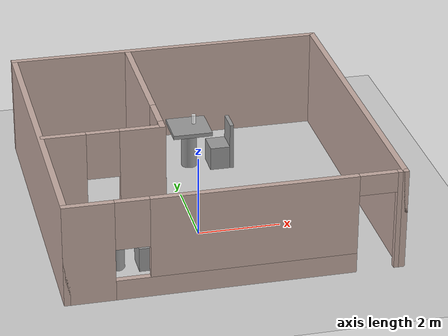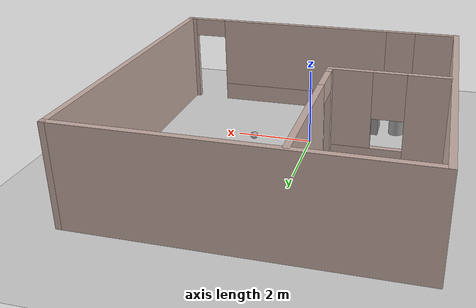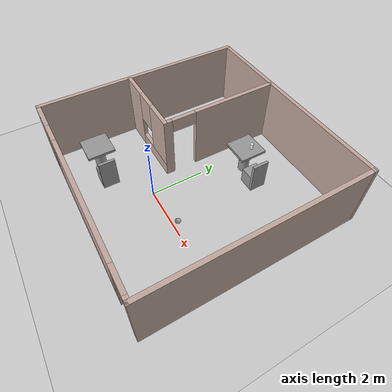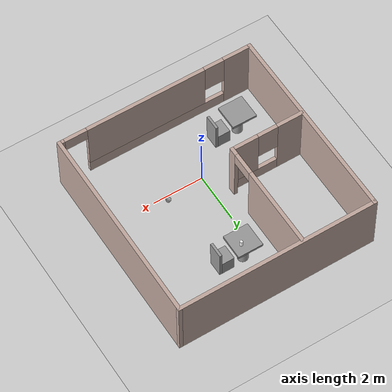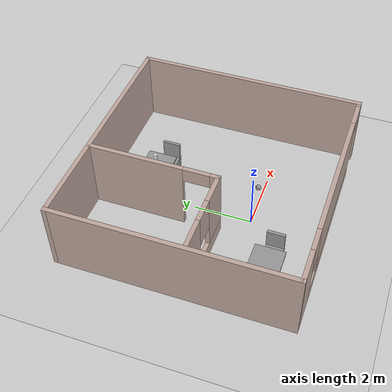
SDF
<sdf version="1.6">
 <world name="default">
  <plugin name="hello" filename="libhello.so"/>
  <light name="sun" type="directional">
   <pose>0 0 10 0 -0 0</pose>
   <diffuse>0.8 0.8 0.8 1</diffuse>
   <specular>0.2 0.2 0.2 1</specular>
   <attenuation>
    <range>1000</range>
    <constant>0.9</constant>
    <linear>0.01</linear>
    <quadratic>0.001</quadratic>
   </attenuation>
   <direction>-0.5 0.1 -0.9</direction>
  </light>
  <model name="ground_plane">
   <static>1</static>
   <link name="link">
    <collision name="collision">
     <geometry><plane><normal>0 0 1</normal><size>100 100</size></plane></geometry>
     <surface>
      <contact><collide_bitmask>65535</collide_bitmask></contact>
      <friction><ode><mu>100</mu><mu2>50</mu2></ode></friction>
     </surface>
    </collision>
    <visual name="visual">
     <cast_shadows>0</cast_shadows>
     <geometry><plane><normal>0 0 1</normal><size>100 100</size></plane></geometry>
     <material>
      <script><uri>file://media/materials/scripts/gazebo.material</uri><name>Gazebo/Grey</name></script>
     </material>
    </visual>
   </link>
  </model>
  <gravity>0 0 -9.8</gravity>
  <magnetic_field>6e-06 2.3e-05 -4.2e-05</magnetic_field>
  <atmosphere type="adiabatic"/>
  <physics name="default_physics" default="0" type="ode">
   <max_step_size>0.001</max_step_size>
   <real_time_factor>1</real_time_factor>
   <real_time_update_rate>1000</real_time_update_rate>
  </physics>
  <scene><ambient>0.4 0.4 0.4 1</ambient><background>0.7 0.7 0.7 1</background><shadows>1</shadows></scene>
  <spherical_coordinates>
   <surface_model>EARTH_WGS84</surface_model>
   <latitude_deg>0</latitude_deg>
   <longitude_deg>0</longitude_deg>
   <elevation>0</elevation>
   <heading_deg>0</heading_deg>
  </spherical_coordinates>
  <model name="model">
   <pose>0.334 1.4475 0 0 -0 0</pose>
   <link name="Wall_1">
    <collision name="Wall_1_Collision">
     <geometry><box><size>8 0.15 2.5</size></box></geometry>
     <pose>0 0 1.25 0 -0 0</pose>
    </collision>
    <visual name="Wall_1_Visual">
     <pose>0 0 1.25 0 -0 0</pose>
     <geometry><box><size>8 0.15 2.5</size></box></geometry>
     <material>
      <script><uri>file://media/materials/scripts/gazebo.material</uri><name>Gazebo/Grey</name></script>
      <ambient>0.760784 0.662745 0.627451 1</ambient>
     </material>
     <meta><layer>0</layer></meta>
    </visual>
    <pose>-3.925 0 0 0 0 -1.5708</pose>
   </link>
   <link name="Wall_2">
    <pose>0 -3.925 0 0 -0 0</pose>
    <visual name="Wall_2_Visual_0">
     <pose>-3.39988 0 1.25 0 -0 0</pose>
     <geometry><box><size>1.20024 0.15 2.5</size></box></geometry>
     <material>
      <script><uri>file://media/materials/scripts/gazebo.material</uri><name>Gazebo/Grey</name></script>
      <ambient>0.760784 0.662745 0.627451 1</ambient>
     </material>
     <meta><layer>0</layer></meta>
    </visual>
    <collision name="Wall_2_Collision_0">
     <geometry><box><size>1.20024 0.15 2.5</size></box></geometry>
     <pose>-3.39988 0 1.25 0 -0 0</pose>
    </collision>
    <visual name="Wall_2_Visual_1">
     <pose>3.86822 0 1.25 0 -0 0</pose>
     <geometry><box><size>0.26356 0.15 2.5</size></box></geometry>
     <material>
      <script><uri>file://media/materials/scripts/gazebo.material</uri><name>Gazebo/Grey</name></script>
      <ambient>0.760784 0.662745 0.627451 1</ambient>
     </material>
     <meta><layer>0</layer></meta>
    </visual>
    <collision name="Wall_2_Collision_1">
     <geometry><box><size>0.26356 0.15 2.5</size></box></geometry>
     <pose>3.86822 0 1.25 0 -0 0</pose>
    </collision>
    <visual name="Wall_2_Visual_2">
     <pose>0.01834 0 0.25 0 -0 0</pose>
     <geometry><box><size>5.6362 0.15 0.5</size></box></geometry>
     <material>
      <script><uri>file://media/materials/scripts/gazebo.material</uri><name>Gazebo/Grey</name></script>
      <ambient>0.760784 0.662745 0.627451 1</ambient>
     </material>
     <meta><layer>0</layer></meta>
    </visual>
    <collision name="Wall_2_Collision_2">
     <geometry><box><size>5.6362 0.15 0.5</size></box></geometry>
     <pose>0.01834 0 0.25 0 -0 0</pose>
    </collision>
    <visual name="Wall_2_Visual_3">
     <pose>0.41834 0 1.5 0 -0 0</pose>
     <geometry><box><size>4.8362 0.15 2</size></box></geometry>
     <material>
      <script><uri>file://media/materials/scripts/gazebo.material</uri><name>Gazebo/Grey</name></script>
      <ambient>0.760784 0.662745 0.627451 1</ambient>
     </material>
     <meta><layer>0</layer></meta>
    </visual>
    <collision name="Wall_2_Collision_3">
     <geometry><box><size>4.8362 0.15 2</size></box></geometry>
     <pose>0.41834 0 1.5 0 -0 0</pose>
    </collision>
    <visual name="Wall_2_Visual_4">
     <pose>-2.39976 0 1.9 0 -0 0</pose>
     <geometry><box><size>0.8 0.15 1.2</size></box></geometry>
     <material>
      <script><uri>file://media/materials/scripts/gazebo.material</uri><name>Gazebo/Grey</name></script>
      <ambient>0.760784 0.662745 0.627451 1</ambient>
     </material>
     <meta><layer>0</layer></meta>
    </visual>
    <collision name="Wall_2_Collision_4">
     <geometry><box><size>0.8 0.15 1.2</size></box></geometry>
     <pose>-2.39976 0 1.9 0 -0 0</pose>
    </collision>
    <visual name="Wall_2_Visual_5">
     <pose>3.28644 0 2.25 0 -0 0</pose>
     <geometry><box><size>0.9 0.15 0.5</size></box></geometry>
     <material>
      <script><uri>file://media/materials/scripts/gazebo.material</uri><name>Gazebo/Grey</name></script>
      <ambient>0.760784 0.662745 0.627451 1</ambient>
     </material>
     <meta><layer>0</layer></meta>
    </visual>
    <collision name="Wall_2_Collision_5">
     <geometry><box><size>0.9 0.15 0.5</size></box></geometry>
     <pose>3.28644 0 2.25 0 -0 0</pose>
    </collision>
   </link>
   <link name="Wall_3">
    <collision name="Wall_3_Collision">
     <geometry><box><size>8 0.15 2.5</size></box></geometry>
     <pose>0 0 1.25 0 -0 0</pose>
    </collision>
    <visual name="Wall_3_Visual">
     <pose>0 0 1.25 0 -0 0</pose>
     <geometry><box><size>8 0.15 2.5</size></box></geometry>
     <material>
      <script><uri>file://media/materials/scripts/gazebo.material</uri><name>Gazebo/Grey</name></script>
      <ambient>0.760784 0.662745 0.627451 1</ambient>
     </material>
     <meta><layer>0</layer></meta>
    </visual>
    <pose>3.925 0 0 0 -0 1.5708</pose>
   </link>
   <link name="Wall_4">
    <collision name="Wall_4_Collision">
     <geometry><box><size>8 0.15 2.5</size></box></geometry>
     <pose>0 0 1.25 0 -0 0</pose>
    </collision>
    <visual name="Wall_4_Visual">
     <pose>0 0 1.25 0 -0 0</pose>
     <geometry><box><size>8 0.15 2.5</size></box></geometry>
     <material>
      <script><uri>file://media/materials/scripts/gazebo.material</uri><name>Gazebo/Grey</name></script>
      <ambient>0.760784 0.662745 0.627451 1</ambient>
     </material>
     <meta><layer>0</layer></meta>
    </visual>
    <pose>0 3.925 0 0 -0 3.14159</pose>
   </link>
   <link name="Wall_6">
    <pose>-2.42656 -0.496144 0 0 -0 0</pose>
    <visual name="Wall_6_Visual_0">
     <pose>-0.959286 0 1.25 0 -0 0</pose>
     <geometry><box><size>1.08143 0.15 2.5</size></box></geometry>
     <material>
      <script><uri>file://media/materials/scripts/gazebo.material</uri><name>Gazebo/Grey</name></script>
      <ambient>0.760784 0.662745 0.627451 1</ambient>
     </material>
     <meta><layer>0</layer></meta>
    </visual>
    <collision name="Wall_6_Collision_0">
     <geometry><box><size>1.08143 0.15 2.5</size></box></geometry>
     <pose>-0.959286 0 1.25 0 -0 0</pose>
    </collision>
    <visual name="Wall_6_Visual_1">
     <pose>0.540714 0 0.25 0 -0 0</pose>
     <geometry><box><size>1.91857 0.15 0.5</size></box></geometry>
     <material>
      <script><uri>file://media/materials/scripts/gazebo.material</uri><name>Gazebo/Grey</name></script>
      <ambient>0.760784 0.662745 0.627451 1</ambient>
     </material>
     <meta><layer>0</layer></meta>
    </visual>
    <collision name="Wall_6_Collision_1">
     <geometry><box><size>1.91857 0.15 0.5</size></box></geometry>
     <pose>0.540714 0 0.25 0 -0 0</pose>
    </collision>
    <visual name="Wall_6_Visual_2">
     <pose>0.940714 0 1.5 0 -0 0</pose>
     <geometry><box><size>1.11857 0.15 2</size></box></geometry>
     <material>
      <script><uri>file://media/materials/scripts/gazebo.material</uri><name>Gazebo/Grey</name></script>
      <ambient>0.760784 0.662745 0.627451 1</ambient>
     </material>
     <meta><layer>0</layer></meta>
    </visual>
    <collision name="Wall_6_Collision_2">
     <geometry><box><size>1.11857 0.15 2</size></box></geometry>
     <pose>0.940714 0 1.5 0 -0 0</pose>
    </collision>
    <visual name="Wall_6_Visual_3">
     <pose>-0.018573 0 1.9 0 -0 0</pose>
     <geometry><box><size>0.8 0.15 1.2</size></box></geometry>
     <material>
      <script><uri>file://media/materials/scripts/gazebo.material</uri><name>Gazebo/Grey</name></script>
      <ambient>0.760784 0.662745 0.627451 1</ambient>
     </material>
     <meta><layer>0</layer></meta>
    </visual>
    <collision name="Wall_6_Collision_3">
     <geometry><box><size>0.8 0.15 1.2</size></box></geometry>
     <pose>-0.018573 0 1.9 0 -0 0</pose>
    </collision>
   </link>
   <link name="Wall_7">
    <pose>-1.00156 1.67886 0 0 -0 1.5708</pose>
    <visual name="Wall_7_Visual_0">
     <pose>-2.08211 0 1.25 0 -0 0</pose>
     <geometry><box><size>0.335775 0.15 2.5</size></box></geometry>
     <material>
      <script><uri>file://media/materials/scripts/gazebo.material</uri><name>Gazebo/Grey</name></script>
      <ambient>0.760784 0.662745 0.627451 1</ambient>
     </material>
     <meta><layer>0</layer></meta>
    </visual>
    <collision name="Wall_7_Collision_0">
     <geometry><box><size>0.335775 0.15 2.5</size></box></geometry>
     <pose>-2.08211 0 1.25 0 -0 0</pose>
    </collision>
    <visual name="Wall_7_Visual_1">
     <pose>0.617888 0 1.25 0 -0 0</pose>
     <geometry><box><size>3.26423 0.15 2.5</size></box></geometry>
     <material>
      <script><uri>file://media/materials/scripts/gazebo.material</uri><name>Gazebo/Grey</name></script>
      <ambient>0.760784 0.662745 0.627451 1</ambient>
     </material>
     <meta><layer>0</layer></meta>
    </visual>
    <collision name="Wall_7_Collision_1">
     <geometry><box><size>3.26423 0.15 2.5</size></box></geometry>
     <pose>0.617888 0 1.25 0 -0 0</pose>
    </collision>
    <visual name="Wall_7_Visual_2">
     <pose>-1.46423 0 2.25 0 -0 0</pose>
     <geometry><box><size>0.9 0.15 0.5</size></box></geometry>
     <material>
      <script><uri>file://media/materials/scripts/gazebo.material</uri><name>Gazebo/Grey</name></script>
      <ambient>0.760784 0.662745 0.627451 1</ambient>
     </material>
     <meta><layer>0</layer></meta>
    </visual>
    <collision name="Wall_7_Collision_2">
     <geometry><box><size>0.9 0.15 0.5</size></box></geometry>
     <pose>-1.46423 0 2.25 0 -0 0</pose>
    </collision>
   </link>
   <static>1</static>
  </model>
  <audio><device>default</device></audio>
  <model name="Desk_clone">
   <link name="link_0">
    <pose>0 0 -0.275 0 -0 0</pose>
    <inertial>
     <mass>1</mass>
     <inertia><ixx>0.145833</ixx><ixy>0</ixy><ixz>0</ixz><iyy>0.145833</iyy><iyz>0</iyz><izz>0.125</izz></inertia>
    </inertial>
    <visual name="visual">
     <geometry><cylinder><radius>0.2</radius><length>1</length></cylinder></geometry>
     <material>
      <lighting>1</lighting>
      <script><uri>file://media/materials/scripts/gazebo.material</uri><name>Gazebo/Grey</name></script>
      <shader type="pixel"><normal_map>__default__</normal_map></shader>
      <ambient>0.3 0.3 0.3 1</ambient>
      <diffuse>0.7 0.7 0.7 1</diffuse>
      <specular>0.01 0.01 0.01 1</specular>
      <emissive>0 0 0 1</emissive>
     </material>
    </visual>
    <collision name="collision">
     <geometry><cylinder><radius>0.2</radius><length>1</length></cylinder></geometry>
     <surface>
      <friction>
       <ode><mu>1</mu><mu2>1</mu2><fdir1>0 0 0</fdir1><slip1>0</slip1><slip2>0</slip2></ode>
       <torsional>
        <coefficient>1</coefficient>
        <patch_radius>0</patch_radius>
        <surface_radius>0</surface_radius>
        <use_patch_radius>1</use_patch_radius>
        <ode><slip>0</slip></ode>
       </torsional>
      </friction>
      <bounce><restitution_coefficient>0</restitution_coefficient><threshold>1e+06</threshold></bounce>
      <contact>
       <collide_without_contact>0</collide_without_contact>
       <collide_without_contact_bitmask>1</collide_without_contact_bitmask>
       <collide_bitmask>1</collide_bitmask>
       <ode>
        <soft_cfm>0</soft_cfm>
        <soft_erp>0.2</soft_erp>
        <kp>1e+13</kp>
        <kd>1</kd>
        <max_vel>0.01</max_vel>
        <min_depth>0</min_depth>
       </ode>
       <bullet>
        <split_impulse>1</split_impulse>
        <split_impulse_penetration_threshold>-0.01</split_impulse_penetration_threshold>
        <soft_cfm>0</soft_cfm>
        <soft_erp>0.2</soft_erp>
        <kp>1e+13</kp>
        <kd>1</kd>
       </bullet>
      </contact>
     </surface>
    </collision>
   </link>
   <link name="link_1">
    <pose>-0 -0 0.275 0 -0 0</pose>
    <inertial>
     <mass>1</mass>
     <inertia>
      <ixx>0.166667</ixx>
      <ixy>0</ixy>
      <ixz>0</ixz>
      <iyy>0.166667</iyy>
      <iyz>0</iyz>
      <izz>0.166667</izz>
     </inertia>
    </inertial>
    <visual name="visual">
     <geometry><box><size>1 1 0.1</size></box></geometry>
     <material>
      <lighting>1</lighting>
      <script><uri>file://media/materials/scripts/gazebo.material</uri><name>Gazebo/Grey</name></script>
      <shader type="pixel"><normal_map>__default__</normal_map></shader>
      <ambient>0.3 0.3 0.3 1</ambient>
      <diffuse>0.7 0.7 0.7 1</diffuse>
      <specular>0.01 0.01 0.01 1</specular>
      <emissive>0 0 0 1</emissive>
     </material>
    </visual>
    <collision name="collision">
     <geometry><box><size>1 1 0.1</size></box></geometry>
     <surface>
      <friction>
       <ode><mu>1</mu><mu2>1</mu2><fdir1>0 0 0</fdir1><slip1>0</slip1><slip2>0</slip2></ode>
       <torsional>
        <coefficient>1</coefficient>
        <patch_radius>0</patch_radius>
        <surface_radius>0</surface_radius>
        <use_patch_radius>1</use_patch_radius>
        <ode><slip>0</slip></ode>
       </torsional>
      </friction>
      <bounce><restitution_coefficient>0</restitution_coefficient><threshold>1e+06</threshold></bounce>
      <contact>
       <collide_without_contact>0</collide_without_contact>
       <collide_without_contact_bitmask>1</collide_without_contact_bitmask>
       <collide_bitmask>1</collide_bitmask>
       <ode>
        <soft_cfm>0</soft_cfm>
        <soft_erp>0.2</soft_erp>
        <kp>1e+13</kp>
        <kd>1</kd>
        <max_vel>0.01</max_vel>
        <min_depth>0</min_depth>
       </ode>
       <bullet>
        <split_impulse>1</split_impulse>
        <split_impulse_penetration_threshold>-0.01</split_impulse_penetration_threshold>
        <soft_cfm>0</soft_cfm>
        <soft_erp>0.2</soft_erp>
        <kp>1e+13</kp>
        <kd>1</kd>
       </bullet>
      </contact>
     </surface>
    </collision>
   </link>
   <joint name="link_0_JOINT_0" type="revolute">
    <parent>link_0</parent>
    <child>link_1</child>
    <axis>
     <xyz>0 0 1</xyz>
     <use_parent_model_frame>0</use_parent_model_frame>
     <limit>
      <lower>-1.79769e+308</lower>
      <upper>1.79769e+308</upper>
      <effort>-1</effort>
      <velocity>-1</velocity>
     </limit>
     <dynamics>
      <spring_reference>0</spring_reference>
      <spring_stiffness>0</spring_stiffness>
      <damping>0</damping>
      <friction>0</friction>
     </dynamics>
    </axis>
    <physics>
     <ode><limit><cfm>0</cfm><erp>0.2</erp></limit><suspension><cfm>0</cfm><erp>0.2</erp></suspension></ode>
    </physics>
   </joint>
   <static>0</static>
   <pose>0.553905 3.54992 0.774994 1e-06 1e-06 -0.002745</pose>
  </model>
  <model name="chair_clone">
   <link name="link_3_clone">
    <inertial>
     <mass>1</mass>
     <inertia>
      <ixx>0.166667</ixx>
      <ixy>0</ixy>
      <ixz>0</ixz>
      <iyy>0.166667</iyy>
      <iyz>0</iyz>
      <izz>0.166667</izz>
     </inertia>
    </inertial>
    <pose>0.15 0 0.15 0 -0 0</pose>
    <visual name="visual">
     <geometry><box><size>0.1 0.6 1.2</size></box></geometry>
     <material>
      <lighting>1</lighting>
      <script><uri>file://media/materials/scripts/gazebo.material</uri><name>Gazebo/Grey</name></script>
      <shader type="vertex"><normal_map>__default__</normal_map></shader>
      <ambient>0.3 0.3 0.3 1</ambient>
      <diffuse>0.7 0.7 0.7 1</diffuse>
      <specular>0.01 0.01 0.01 1</specular>
      <emissive>0 0 0 1</emissive>
     </material>
    </visual>
    <collision name="collision">
     <geometry><box><size>0.1 0.6 1.2</size></box></geometry>
     <surface>
      <friction>
       <ode><mu>1</mu><mu2>1</mu2><fdir1>0 0 0</fdir1><slip1>0</slip1><slip2>0</slip2></ode>
       <torsional>
        <coefficient>1</coefficient>
        <patch_radius>0</patch_radius>
        <surface_radius>0</surface_radius>
        <use_patch_radius>1</use_patch_radius>
        <ode><slip>0</slip></ode>
       </torsional>
      </friction>
      <bounce><restitution_coefficient>0</restitution_coefficient><threshold>1e+06</threshold></bounce>
      <contact>
       <collide_without_contact>0</collide_without_contact>
       <collide_without_contact_bitmask>1</collide_without_contact_bitmask>
       <collide_bitmask>1</collide_bitmask>
       <ode>
        <soft_cfm>0</soft_cfm>
        <soft_erp>0.2</soft_erp>
        <kp>1e+13</kp>
        <kd>1</kd>
        <max_vel>0.01</max_vel>
        <min_depth>0</min_depth>
       </ode>
       <bullet>
        <split_impulse>1</split_impulse>
        <split_impulse_penetration_threshold>-0.01</split_impulse_penetration_threshold>
        <soft_cfm>0</soft_cfm>
        <soft_erp>0.2</soft_erp>
        <kp>1e+13</kp>
        <kd>1</kd>
       </bullet>
      </contact>
     </surface>
    </collision>
   </link>
   <link name="link_4">
    <inertial>
     <mass>1</mass>
     <inertia>
      <ixx>0.166667</ixx>
      <ixy>0</ixy>
      <ixz>0</ixz>
      <iyy>0.166667</iyy>
      <iyz>0</iyz>
      <izz>0.166667</izz>
     </inertia>
    </inertial>
    <pose>-0.15 0 -0.15 0 -0 0</pose>
    <visual name="visual">
     <geometry><box><size>0.5 0.6 0.6</size></box></geometry>
     <material>
      <lighting>1</lighting>
      <script><uri>file://media/materials/scripts/gazebo.material</uri><name>Gazebo/Grey</name></script>
      <shader type="vertex"><normal_map>__default__</normal_map></shader>
      <ambient>0.3 0.3 0.3 1</ambient>
      <diffuse>0.7 0.7 0.7 1</diffuse>
      <specular>0.01 0.01 0.01 1</specular>
      <emissive>0 0 0 1</emissive>
     </material>
    </visual>
    <collision name="collision">
     <geometry><box><size>0.5 0.6 0.6</size></box></geometry>
     <surface>
      <friction>
       <ode><mu>1</mu><mu2>1</mu2><fdir1>0 0 0</fdir1><slip1>0</slip1><slip2>0</slip2></ode>
       <torsional>
        <coefficient>1</coefficient>
        <patch_radius>0</patch_radius>
        <surface_radius>0</surface_radius>
        <use_patch_radius>1</use_patch_radius>
        <ode><slip>0</slip></ode>
       </torsional>
      </friction>
      <bounce><restitution_coefficient>0</restitution_coefficient><threshold>1e+06</threshold></bounce>
      <contact>
       <collide_without_contact>0</collide_without_contact>
       <collide_without_contact_bitmask>1</collide_without_contact_bitmask>
       <collide_bitmask>1</collide_bitmask>
       <ode>
        <soft_cfm>0</soft_cfm>
        <soft_erp>0.2</soft_erp>
        <kp>1e+13</kp>
        <kd>1</kd>
        <max_vel>0.01</max_vel>
        <min_depth>0</min_depth>
       </ode>
       <bullet>
        <split_impulse>1</split_impulse>
        <split_impulse_penetration_threshold>-0.01</split_impulse_penetration_threshold>
        <soft_cfm>0</soft_cfm>
        <soft_erp>0.2</soft_erp>
        <kp>1e+13</kp>
        <kd>1</kd>
       </bullet>
      </contact>
     </surface>
    </collision>
   </link>
   <joint name="link_3_clone_JOINT_7" type="fixed">
    <parent>link_3_clone</parent>
    <child>link_4</child>
    <physics>
     <ode><limit><cfm>0</cfm><erp>0.2</erp></limit><suspension><cfm>0</cfm><erp>0.2</erp></suspension></ode>
    </physics>
   </joint>
   <static>0</static>
   <pose>1.42238 3.43153 0.45 1e-06 1e-06 -0.001423</pose>
  </model>
  <model name="my_ball">
   <link name="link_0">
    <inertial>
     <mass>1</mass>
     <inertia><ixx>0.1</ixx><ixy>0</ixy><ixz>0</ixz><iyy>0.1</iyy><iyz>0</iyz><izz>0.1</izz></inertia>
    </inertial>
    <pose>0 0 0.1 0 -0 0</pose>
    <visual name="visual">
     <geometry><sphere><radius>0.1</radius></sphere></geometry>
     <material>
      <lighting>1</lighting>
      <script><uri>file://media/materials/scripts/gazebo.material</uri><name>Gazebo/Grey</name></script>
      <shader type="vertex"><normal_map>__default__</normal_map></shader>
      <ambient>1 1 1 1</ambient>
      <diffuse>1 1 1 1</diffuse>
      <specular>1 1 1 1</specular>
      <emissive>1 1 1 1</emissive>
     </material>
    </visual>
    <collision name="collision">
     <geometry><sphere><radius>0.1</radius></sphere></geometry>
     <surface>
      <friction>
       <ode><mu>1</mu><mu2>1</mu2><fdir1>0 0 0</fdir1><slip1>0</slip1><slip2>0</slip2></ode>
       <torsional>
        <coefficient>1</coefficient>
        <patch_radius>0</patch_radius>
        <surface_radius>0</surface_radius>
        <use_patch_radius>1</use_patch_radius>
        <ode><slip>0</slip></ode>
       </torsional>
      </friction>
      <bounce><restitution_coefficient>0</restitution_coefficient><threshold>1e+06</threshold></bounce>
      <contact>
       <collide_without_contact>0</collide_without_contact>
       <collide_without_contact_bitmask>1</collide_without_contact_bitmask>
       <collide_bitmask>1</collide_bitmask>
       <ode>
        <soft_cfm>0</soft_cfm>
        <soft_erp>0.2</soft_erp>
        <kp>1e+13</kp>
        <kd>1</kd>
        <max_vel>0.01</max_vel>
        <min_depth>0</min_depth>
       </ode>
       <bullet>
        <split_impulse>1</split_impulse>
        <split_impulse_penetration_threshold>-0.01</split_impulse_penetration_threshold>
        <soft_cfm>0</soft_cfm>
        <soft_erp>0.2</soft_erp>
        <kp>1e+13</kp>
        <kd>1</kd>
       </bullet>
      </contact>
     </surface>
    </collision>
   </link>
   <static>0</static>
   <pose>1.51589 0.197764 -0 0 -0 0</pose>
  </model>
  <model name="beer">
   <link name="link">
    <pose>1.2 0 1.18 0 -0 0</pose>
    <inertial>
     <mass>0.39</mass>
     <inertia><ixx>0.00058</ixx><ixy>0</ixy><ixz>0</ixz><iyy>0.00058</iyy><iyz>0</iyz><izz>0.00019</izz></inertia>
    </inertial>
    <visual name="visual">
     <geometry><cylinder><radius>0.055</radius><length>0.23</length></cylinder></geometry>
     <material>
      <script>
       <uri>model://beer/materials/scripts</uri>
       <uri>model://beer/materials/textures</uri>
       <name>Beer/Diffuse</name>
      </script>
      <shader type="pixel"><normal_map>__default__</normal_map></shader>
      <ambient>1 1 1 1</ambient>
      <diffuse>1 1 1 1</diffuse>
      <specular>0 0 0 1</specular>
      <emissive>0 0 0 1</emissive>
     </material>
    </visual>
    <collision name="collision">
     <geometry><cylinder><radius>0.055</radius><length>0.23</length></cylinder></geometry>
     <surface>
      <friction>
       <ode><mu>1</mu><mu2>1</mu2><fdir1>0 0 0</fdir1><slip1>0</slip1><slip2>0</slip2></ode>
       <torsional>
        <coefficient>1</coefficient>
        <patch_radius>0</patch_radius>
        <surface_radius>0</surface_radius>
        <use_patch_radius>1</use_patch_radius>
        <ode><slip>0</slip></ode>
       </torsional>
      </friction>
      <bounce><restitution_coefficient>0</restitution_coefficient><threshold>1e+06</threshold></bounce>
      <contact>
       <collide_without_contact>0</collide_without_contact>
       <collide_without_contact_bitmask>1</collide_without_contact_bitmask>
       <collide_bitmask>1</collide_bitmask>
       <ode>
        <soft_cfm>0</soft_cfm>
        <soft_erp>0.2</soft_erp>
        <kp>1e+13</kp>
        <kd>1</kd>
        <max_vel>0.01</max_vel>
        <min_depth>0</min_depth>
       </ode>
       <bullet>
        <split_impulse>1</split_impulse>
        <split_impulse_penetration_threshold>-0.01</split_impulse_penetration_threshold>
        <soft_cfm>0</soft_cfm>
        <soft_erp>0.2</soft_erp>
        <kp>1e+13</kp>
        <kd>1</kd>
       </bullet>
      </contact>
     </surface>
    </collision>
   </link>
   <static>0</static>
   <pose>-0.494056 3.69056 0.034985 -8e-06 -1e-05 -0.010491</pose>
  </model>
  <model name="Desk_clone_clone">
   <link name="link_0">
    <pose>0 0 -0.275 0 -0 0</pose>
    <inertial>
     <mass>1</mass>
     <inertia><ixx>0.145833</ixx><ixy>0</ixy><ixz>0</ixz><iyy>0.145833</iyy><iyz>0</iyz><izz>0.125</izz></inertia>
    </inertial>
    <visual name="visual">
     <geometry><cylinder><radius>0.2</radius><length>1</length></cylinder></geometry>
     <material>
      <lighting>1</lighting>
      <script><uri>file://media/materials/scripts/gazebo.material</uri><name>Gazebo/Grey</name></script>
      <shader type="pixel"><normal_map>__default__</normal_map></shader>
      <ambient>0.3 0.3 0.3 1</ambient>
      <diffuse>0.7 0.7 0.7 1</diffuse>
      <specular>0.01 0.01 0.01 1</specular>
      <emissive>0 0 0 1</emissive>
     </material>
    </visual>
    <collision name="collision">
     <geometry><cylinder><radius>0.2</radius><length>1</length></cylinder></geometry>
     <surface>
      <friction>
       <ode><mu>1</mu><mu2>1</mu2><fdir1>0 0 0</fdir1><slip1>0</slip1><slip2>0</slip2></ode>
       <torsional>
        <coefficient>1</coefficient>
        <patch_radius>0</patch_radius>
        <surface_radius>0</surface_radius>
        <use_patch_radius>1</use_patch_radius>
        <ode><slip>0</slip></ode>
       </torsional>
      </friction>
      <bounce><restitution_coefficient>0</restitution_coefficient><threshold>1e+06</threshold></bounce>
      <contact>
       <collide_without_contact>0</collide_without_contact>
       <collide_without_contact_bitmask>1</collide_without_contact_bitmask>
       <collide_bitmask>1</collide_bitmask>
       <ode>
        <soft_cfm>0</soft_cfm>
        <soft_erp>0.2</soft_erp>
        <kp>1e+13</kp>
        <kd>1</kd>
        <max_vel>0.01</max_vel>
        <min_depth>0</min_depth>
       </ode>
       <bullet>
        <split_impulse>1</split_impulse>
        <split_impulse_penetration_threshold>-0.01</split_impulse_penetration_threshold>
        <soft_cfm>0</soft_cfm>
        <soft_erp>0.2</soft_erp>
        <kp>1e+13</kp>
        <kd>1</kd>
       </bullet>
      </contact>
     </surface>
    </collision>
   </link>
   <link name="link_1">
    <pose>-0 -0 0.275 0 -0 0</pose>
    <inertial>
     <mass>1</mass>
     <inertia>
      <ixx>0.166667</ixx>
      <ixy>0</ixy>
      <ixz>0</ixz>
      <iyy>0.166667</iyy>
      <iyz>0</iyz>
      <izz>0.166667</izz>
     </inertia>
    </inertial>
    <visual name="visual">
     <geometry><box><size>1 1 0.1</size></box></geometry>
     <material>
      <lighting>1</lighting>
      <script><uri>file://media/materials/scripts/gazebo.material</uri><name>Gazebo/Grey</name></script>
      <shader type="pixel"><normal_map>__default__</normal_map></shader>
      <ambient>0.3 0.3 0.3 1</ambient>
      <diffuse>0.7 0.7 0.7 1</diffuse>
      <specular>0.01 0.01 0.01 1</specular>
      <emissive>0 0 0 1</emissive>
     </material>
    </visual>
    <collision name="collision">
     <geometry><box><size>1 1 0.1</size></box></geometry>
     <surface>
      <friction>
       <ode><mu>1</mu><mu2>1</mu2><fdir1>0 0 0</fdir1><slip1>0</slip1><slip2>0</slip2></ode>
       <torsional>
        <coefficient>1</coefficient>
        <patch_radius>0</patch_radius>
        <surface_radius>0</surface_radius>
        <use_patch_radius>1</use_patch_radius>
        <ode><slip>0</slip></ode>
       </torsional>
      </friction>
      <bounce><restitution_coefficient>0</restitution_coefficient><threshold>1e+06</threshold></bounce>
      <contact>
       <collide_without_contact>0</collide_without_contact>
       <collide_without_contact_bitmask>1</collide_without_contact_bitmask>
       <collide_bitmask>1</collide_bitmask>
       <ode>
        <soft_cfm>0</soft_cfm>
        <soft_erp>0.2</soft_erp>
        <kp>1e+13</kp>
        <kd>1</kd>
        <max_vel>0.01</max_vel>
        <min_depth>0</min_depth>
       </ode>
       <bullet>
        <split_impulse>1</split_impulse>
        <split_impulse_penetration_threshold>-0.01</split_impulse_penetration_threshold>
        <soft_cfm>0</soft_cfm>
        <soft_erp>0.2</soft_erp>
        <kp>1e+13</kp>
        <kd>1</kd>
       </bullet>
      </contact>
     </surface>
    </collision>
   </link>
   <joint name="link_0_JOINT_0" type="revolute">
    <parent>link_0</parent>
    <child>link_1</child>
    <axis>
     <xyz>0 0 1</xyz>
     <use_parent_model_frame>0</use_parent_model_frame>
     <limit>
      <lower>-1.79769e+308</lower>
      <upper>1.79769e+308</upper>
      <effort>-1</effort>
      <velocity>-1</velocity>
     </limit>
     <dynamics>
      <spring_reference>0</spring_reference>
      <spring_stiffness>0</spring_stiffness>
      <damping>0</damping>
      <friction>0</friction>
     </dynamics>
    </axis>
    <physics>
     <ode><limit><cfm>0</cfm><erp>0.2</erp></limit><suspension><cfm>0</cfm><erp>0.2</erp></suspension></ode>
    </physics>
   </joint>
   <static>0</static>
   <pose>-2.20661 -1.1071 0.774995 0 0 -0.001852</pose>
  </model>
  <model name="chair_clone_clone">
   <link name="link_3_clone">
    <inertial>
     <mass>1</mass>
     <inertia>
      <ixx>0.166667</ixx>
      <ixy>0</ixy>
      <ixz>0</ixz>
      <iyy>0.166667</iyy>
      <iyz>0</iyz>
      <izz>0.166667</izz>
     </inertia>
    </inertial>
    <pose>0.15 0 0.15 0 -0 0</pose>
    <visual name="visual">
     <geometry><box><size>0.1 0.6 1.2</size></box></geometry>
     <material>
      <lighting>1</lighting>
      <script><uri>file://media/materials/scripts/gazebo.material</uri><name>Gazebo/Grey</name></script>
      <shader type="vertex"><normal_map>__default__</normal_map></shader>
      <ambient>0.3 0.3 0.3 1</ambient>
      <diffuse>0.7 0.7 0.7 1</diffuse>
      <specular>0.01 0.01 0.01 1</specular>
      <emissive>0 0 0 1</emissive>
     </material>
    </visual>
    <collision name="collision">
     <geometry><box><size>0.1 0.6 1.2</size></box></geometry>
     <surface>
      <friction>
       <ode><mu>1</mu><mu2>1</mu2><fdir1>0 0 0</fdir1><slip1>0</slip1><slip2>0</slip2></ode>
       <torsional>
        <coefficient>1</coefficient>
        <patch_radius>0</patch_radius>
        <surface_radius>0</surface_radius>
        <use_patch_radius>1</use_patch_radius>
        <ode><slip>0</slip></ode>
       </torsional>
      </friction>
      <bounce><restitution_coefficient>0</restitution_coefficient><threshold>1e+06</threshold></bounce>
      <contact>
       <collide_without_contact>0</collide_without_contact>
       <collide_without_contact_bitmask>1</collide_without_contact_bitmask>
       <collide_bitmask>1</collide_bitmask>
       <ode>
        <soft_cfm>0</soft_cfm>
        <soft_erp>0.2</soft_erp>
        <kp>1e+13</kp>
        <kd>1</kd>
        <max_vel>0.01</max_vel>
        <min_depth>0</min_depth>
       </ode>
       <bullet>
        <split_impulse>1</split_impulse>
        <split_impulse_penetration_threshold>-0.01</split_impulse_penetration_threshold>
        <soft_cfm>0</soft_cfm>
        <soft_erp>0.2</soft_erp>
        <kp>1e+13</kp>
        <kd>1</kd>
       </bullet>
      </contact>
     </surface>
    </collision>
   </link>
   <link name="link_4">
    <inertial>
     <mass>1</mass>
     <inertia>
      <ixx>0.166667</ixx>
      <ixy>0</ixy>
      <ixz>0</ixz>
      <iyy>0.166667</iyy>
      <iyz>0</iyz>
      <izz>0.166667</izz>
     </inertia>
    </inertial>
    <pose>-0.15 0 -0.15 0 -0 0</pose>
    <visual name="visual">
     <geometry><box><size>0.5 0.6 0.6</size></box></geometry>
     <material>
      <lighting>1</lighting>
      <script><uri>file://media/materials/scripts/gazebo.material</uri><name>Gazebo/Grey</name></script>
      <shader type="vertex"><normal_map>__default__</normal_map></shader>
      <ambient>0.3 0.3 0.3 1</ambient>
      <diffuse>0.7 0.7 0.7 1</diffuse>
      <specular>0.01 0.01 0.01 1</specular>
      <emissive>0 0 0 1</emissive>
     </material>
    </visual>
    <collision name="collision">
     <geometry><box><size>0.5 0.6 0.6</size></box></geometry>
     <surface>
      <friction>
       <ode><mu>1</mu><mu2>1</mu2><fdir1>0 0 0</fdir1><slip1>0</slip1><slip2>0</slip2></ode>
       <torsional>
        <coefficient>1</coefficient>
        <patch_radius>0</patch_radius>
        <surface_radius>0</surface_radius>
        <use_patch_radius>1</use_patch_radius>
        <ode><slip>0</slip></ode>
       </torsional>
      </friction>
      <bounce><restitution_coefficient>0</restitution_coefficient><threshold>1e+06</threshold></bounce>
      <contact>
       <collide_without_contact>0</collide_without_contact>
       <collide_without_contact_bitmask>1</collide_without_contact_bitmask>
       <collide_bitmask>1</collide_bitmask>
       <ode>
        <soft_cfm>0</soft_cfm>
        <soft_erp>0.2</soft_erp>
        <kp>1e+13</kp>
        <kd>1</kd>
        <max_vel>0.01</max_vel>
        <min_depth>0</min_depth>
       </ode>
       <bullet>
        <split_impulse>1</split_impulse>
        <split_impulse_penetration_threshold>-0.01</split_impulse_penetration_threshold>
        <soft_cfm>0</soft_cfm>
        <soft_erp>0.2</soft_erp>
        <kp>1e+13</kp>
        <kd>1</kd>
       </bullet>
      </contact>
     </surface>
    </collision>
   </link>
   <joint name="link_3_clone_JOINT_7" type="fixed">
    <parent>link_3_clone</parent>
    <child>link_4</child>
    <physics>
     <ode><limit><cfm>0</cfm><erp>0.2</erp></limit><suspension><cfm>0</cfm><erp>0.2</erp></suspension></ode>
    </physics>
   </joint>
   <static>0</static>
   <pose>-1.32375 -1.13424 0.45 2e-06 -0 -0.001406</pose>
  </model>
 </world>
</sdf>
